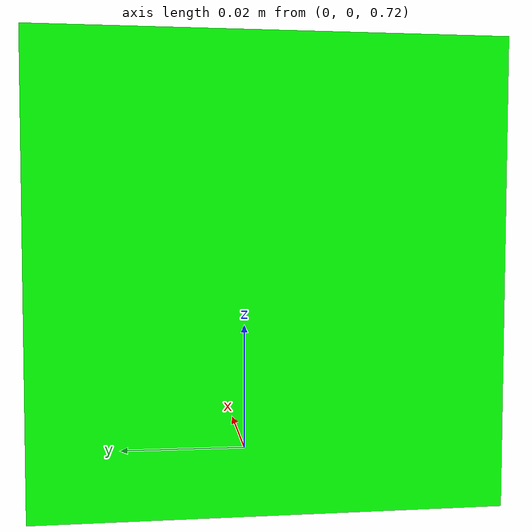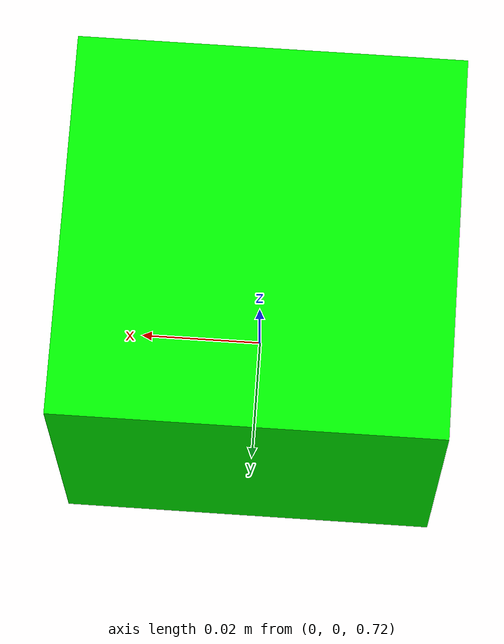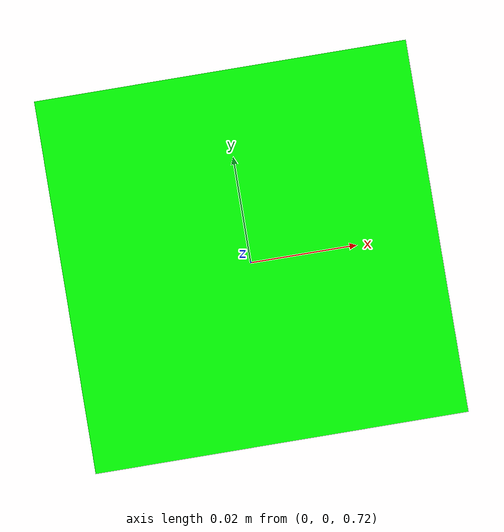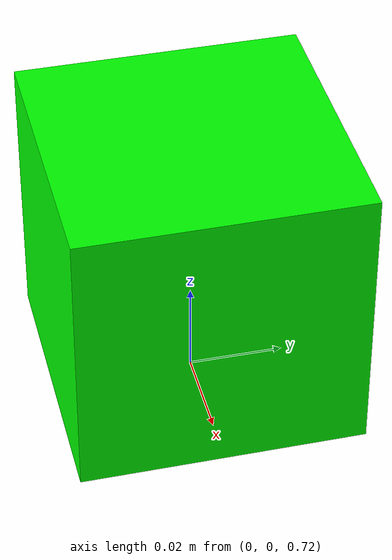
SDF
<?xml version="1.0" ?>
<sdf version="1.5">
  <model name="Payload box">
    <pose>0 0 0.75  0 0 0</pose>
    <static>false</static>
    <link name="base_link">
      <inertial>
        <mass>0.2</mass>
        <inertia>
          <ixx>0.001</ixx>
          <ixy>0</ixy>
          <ixz>0</ixz>
          <iyy>0.001</iyy>
          <iyz>0</iyz>
          <izz>0.001</izz>
        </inertia>
      </inertial>

      <collision name="collision">
        <geometry>
          <box>
            <size>0.06 0.06 0.06</size>
          </box>
        </geometry>
	      <surface>
          <bounce>
            <restitution_coefficient>0.000000</restitution_coefficient>
            <threshold>100000.000000</threshold>
          </bounce>
          <contact>
            <ode>
              <soft_cfm>0.000000</soft_cfm>
              <soft_erp>0.200000</soft_erp>
              <kp>1000000000.000000</kp>
              <kd>1.000000</kd>
              <max_vel>100.000000</max_vel>
              <min_depth>0.001000</min_depth>
            </ode>
          </contact>
          <friction>
            <ode>
              <mu>200</mu>
              <mu2>100</mu2>
            </ode>
          </friction>
        </surface>
      </collision>
      <visual name="visual">
        <geometry>
          <box><size>0.06 0.06 0.06</size></box>
	    </geometry>
	    <material>
	        <ambient>0 1.0 0 1</ambient>
	        <diffuse>0 1.0 0 1</diffuse>
	        <emissive>0 0.5 0 1</emissive>
	    </material>
      </visual>
    </link>
    <plugin name='payload' filename='libgazebo_payload_plugin.so'/>
  </model>
</sdf>
